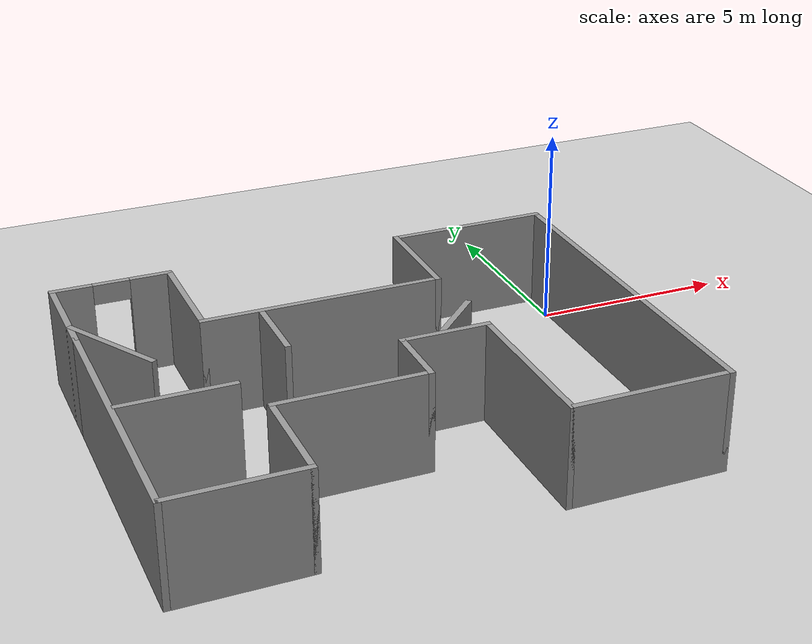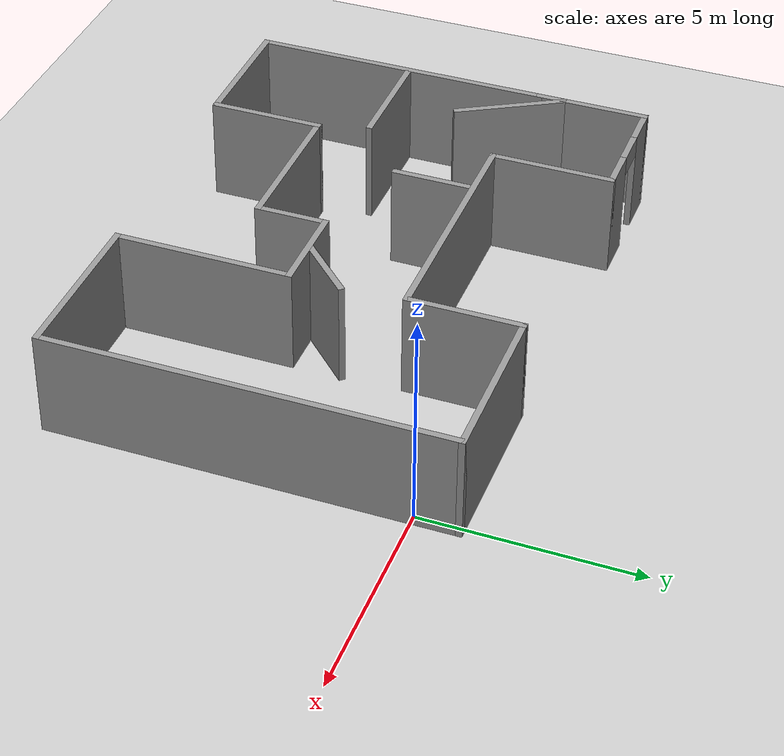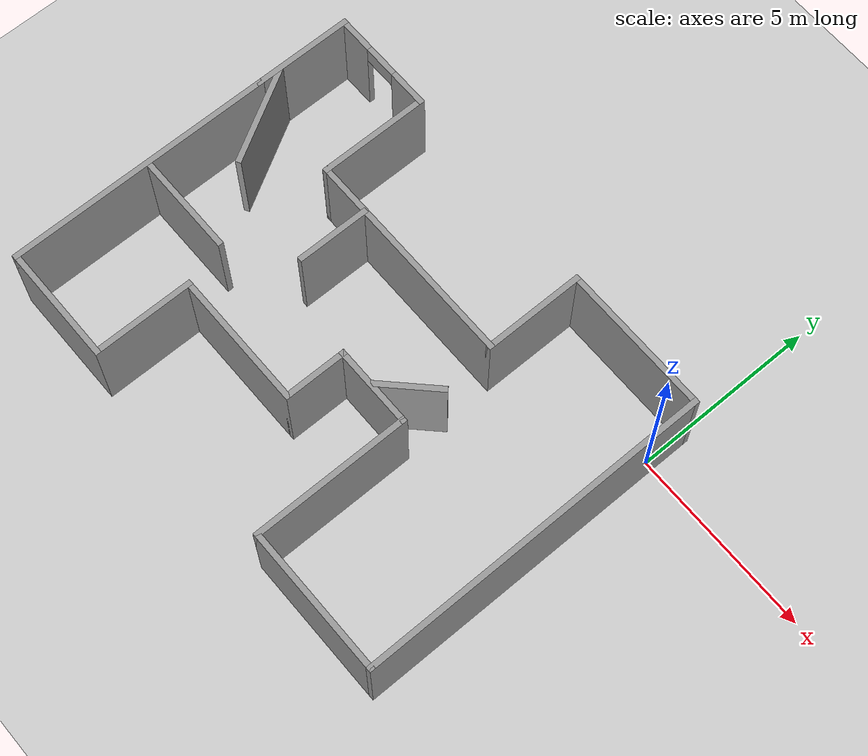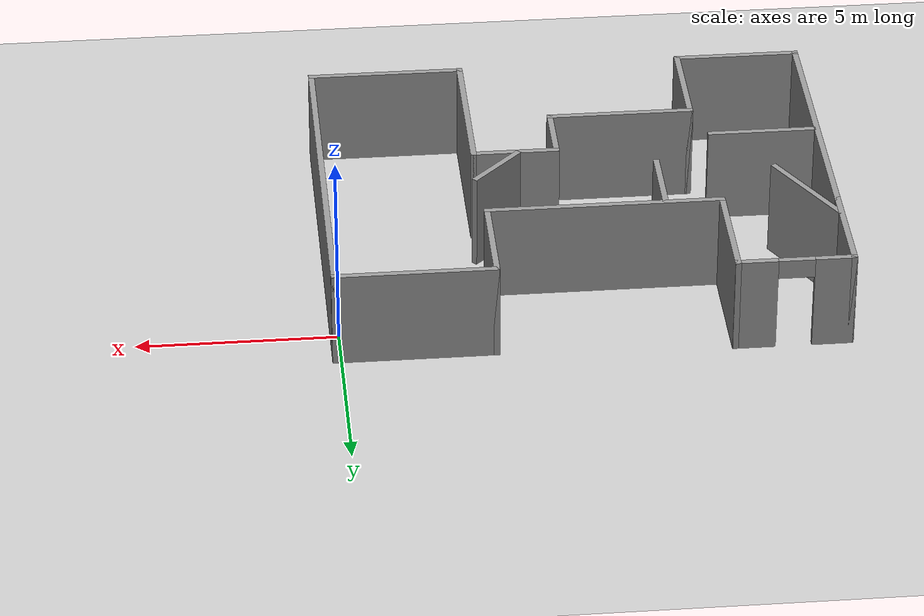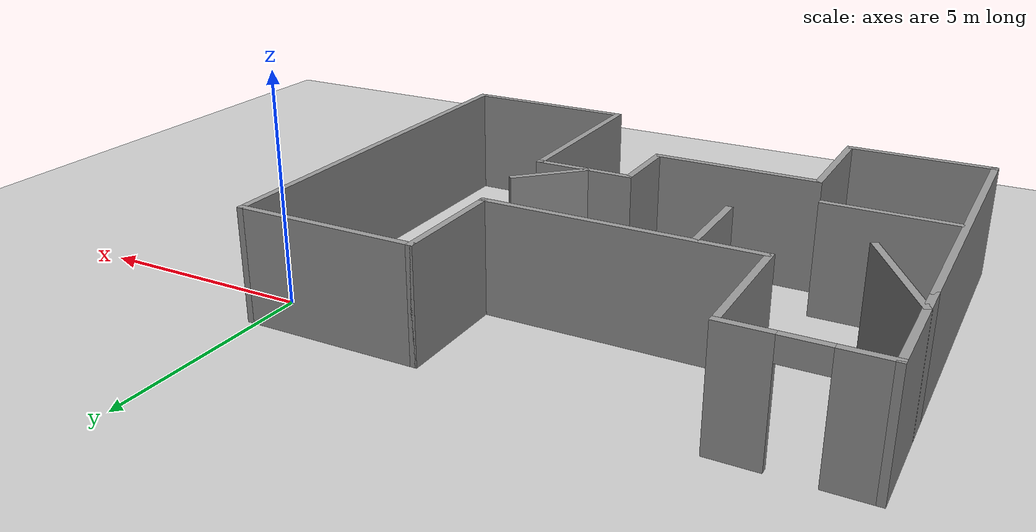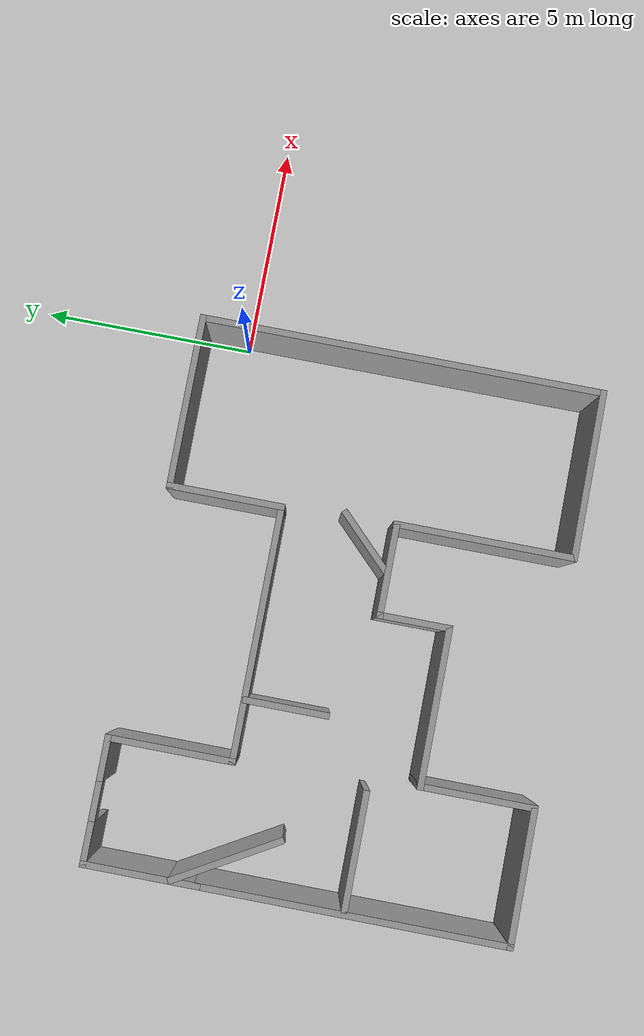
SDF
<sdf version="1.6">
 <world name="default">
  <light name="sun" type="directional">
   <pose>0 0 10 0 -0 0</pose>
   <diffuse>0.8 0.8 0.8 1</diffuse>
   <specular>0.2 0.2 0.2 1</specular>
   <attenuation>
    <range>1000</range>
    <constant>0.9</constant>
    <linear>0.01</linear>
    <quadratic>0.001</quadratic>
   </attenuation>
   <direction>-0.5 0.1 -0.9</direction>
  </light>
  <model name="ground_plane">
   <static>1</static>
   <link name="link">
    <collision name="collision">
     <geometry><plane><normal>0 0 1</normal><size>100 100</size></plane></geometry>
     <surface><friction><ode><mu>100</mu><mu2>50</mu2></ode></friction></surface>
    </collision>
    <visual name="visual">
     <cast_shadows>0</cast_shadows>
     <geometry><plane><normal>0 0 1</normal><size>100 100</size></plane></geometry>
     <material>
      <script><uri>file://media/materials/scripts/gazebo.material</uri><name>Gazebo/Grey</name></script>
     </material>
    </visual>
   </link>
  </model>
  <gravity>0 0 -9.8</gravity>
  <magnetic_field>6e-06 2.3e-05 -4.2e-05</magnetic_field>
  <atmosphere type="adiabatic"/>
  <physics name="default_physics" default="0" type="ode">
   <max_step_size>0.001</max_step_size>
   <real_time_factor>1</real_time_factor>
   <real_time_update_rate>1000</real_time_update_rate>
  </physics>
  <scene><ambient>0.4 0.4 0.4 1</ambient><background>0.7 0.7 0.7 1</background><shadows>1</shadows></scene>
  <spherical_coordinates>
   <surface_model>EARTH_WGS84</surface_model>
   <latitude_deg>0</latitude_deg>
   <longitude_deg>0</longitude_deg>
   <elevation>0</elevation>
   <heading_deg>0</heading_deg>
  </spherical_coordinates>
  <model name="Untitled">
   <pose>-6.1853 -3.55513 0 0 -0 0</pose>
   <link name="Wall_0">
    <collision name="Wall_0_Collision">
     <geometry><box><size>7.25 0.15 2.5</size></box></geometry>
     <pose>0 0 1.25 0 -0 0</pose>
    </collision>
    <visual name="Wall_0_Visual">
     <pose>0 0 1.25 0 -0 0</pose>
     <geometry><box><size>7.25 0.15 2.5</size></box></geometry>
     <material>
      <script><uri>file://media/materials/scripts/gazebo.material</uri><name>Gazebo/Grey</name></script>
      <ambient>1 1 1 1</ambient>
     </material>
     <meta><layer>0</layer></meta>
    </visual>
    <pose>-6.32284 -1.3 0 0 0 -1.5708</pose>
   </link>
   <link name="Wall_1">
    <collision name="Wall_1_Collision">
     <geometry><box><size>3.25 0.15 2.5</size></box></geometry>
     <pose>0 0 1.25 0 -0 0</pose>
    </collision>
    <visual name="Wall_1_Visual">
     <pose>0 0 1.25 0 -0 0</pose>
     <geometry><box><size>3.25 0.15 2.5</size></box></geometry>
     <material>
      <script><uri>file://media/materials/scripts/gazebo.material</uri><name>Gazebo/Grey</name></script>
      <ambient>1 1 1 1</ambient>
     </material>
     <meta><layer>0</layer></meta>
    </visual>
    <pose>-4.77284 -4.85 0 0 -0 0</pose>
   </link>
   <link name="Wall_13">
    <collision name="Wall_13_Collision">
     <geometry><box><size>2.75 0.15 2.5</size></box></geometry>
     <pose>0 0 1.25 0 -0 0</pose>
    </collision>
    <visual name="Wall_13_Visual">
     <pose>0 0 1.25 0 -0 0</pose>
     <geometry><box><size>2.75 0.15 2.5</size></box></geometry>
     <material>
      <script><uri>file://media/materials/scripts/gazebo.material</uri><name>Gazebo/Grey</name></script>
      <ambient>1 1 1 1</ambient>
     </material>
     <meta><layer>0</layer></meta>
    </visual>
    <pose>-6.32284 3.55 0 0 -0 1.5708</pose>
   </link>
   <link name="Wall_14">
    <pose>-4.89784 4.85 0 0 -0 0</pose>
    <visual name="Wall_14_Visual_0">
     <pose>-0.982016 0 1.25 0 -0 0</pose>
     <geometry><box><size>1.03597 0.15 2.5</size></box></geometry>
     <material>
      <script><uri>file://media/materials/scripts/gazebo.material</uri><name>Gazebo/Grey</name></script>
      <ambient>1 1 1 1</ambient>
     </material>
     <meta><layer>0</layer></meta>
    </visual>
    <collision name="Wall_14_Collision_0">
     <geometry><box><size>1.03597 0.15 2.5</size></box></geometry>
     <pose>-0.982016 0 1.25 0 -0 0</pose>
    </collision>
    <visual name="Wall_14_Visual_1">
     <pose>0.967984 0 1.25 0 -0 0</pose>
     <geometry><box><size>1.06403 0.15 2.5</size></box></geometry>
     <material>
      <script><uri>file://media/materials/scripts/gazebo.material</uri><name>Gazebo/Grey</name></script>
      <ambient>1 1 1 1</ambient>
     </material>
     <meta><layer>0</layer></meta>
    </visual>
    <collision name="Wall_14_Collision_1">
     <geometry><box><size>1.06403 0.15 2.5</size></box></geometry>
     <pose>0.967984 0 1.25 0 -0 0</pose>
    </collision>
    <visual name="Wall_14_Visual_2">
     <pose>-0.014032 0 2.25 0 -0 0</pose>
     <geometry><box><size>0.9 0.15 0.5</size></box></geometry>
     <material>
      <script><uri>file://media/materials/scripts/gazebo.material</uri><name>Gazebo/Grey</name></script>
      <ambient>1 1 1 1</ambient>
     </material>
     <meta><layer>0</layer></meta>
    </visual>
    <collision name="Wall_14_Collision_2">
     <geometry><box><size>0.9 0.15 0.5</size></box></geometry>
     <pose>-0.014032 0 2.25 0 -0 0</pose>
    </collision>
   </link>
   <link name="Wall_15">
    <collision name="Wall_15_Collision">
     <geometry><box><size>3 0.15 2.5</size></box></geometry>
     <pose>0 0 1.25 0 -0 0</pose>
    </collision>
    <visual name="Wall_15_Visual">
     <pose>0 0 1.25 0 -0 0</pose>
     <geometry><box><size>3 0.15 2.5</size></box></geometry>
     <material>
      <script><uri>file://media/materials/scripts/gazebo.material</uri><name>Gazebo/Grey</name></script>
      <ambient>1 1 1 1</ambient>
     </material>
     <meta><layer>0</layer></meta>
    </visual>
    <pose>-3.47284 3.425 0 0 0 -1.5708</pose>
   </link>
   <link name="Wall_16">
    <collision name="Wall_16_Collision">
     <geometry><box><size>6 0.15 2.5</size></box></geometry>
     <pose>0 0 1.25 0 -0 0</pose>
    </collision>
    <visual name="Wall_16_Visual">
     <pose>0 0 1.25 0 -0 0</pose>
     <geometry><box><size>6 0.15 2.5</size></box></geometry>
     <material>
      <script><uri>file://media/materials/scripts/gazebo.material</uri><name>Gazebo/Grey</name></script>
      <ambient>1 1 1 1</ambient>
     </material>
     <meta><layer>0</layer></meta>
    </visual>
    <pose>-0.54784 2 0 0 -0 0</pose>
   </link>
   <link name="Wall_17">
    <collision name="Wall_17_Collision">
     <geometry><box><size>2.75 0.15 2.5</size></box></geometry>
     <pose>0 0 1.25 0 -0 0</pose>
    </collision>
    <visual name="Wall_17_Visual">
     <pose>0 0 1.25 0 -0 0</pose>
     <geometry><box><size>2.75 0.15 2.5</size></box></geometry>
     <material>
      <script><uri>file://media/materials/scripts/gazebo.material</uri><name>Gazebo/Grey</name></script>
      <ambient>1 1 1 1</ambient>
     </material>
     <meta><layer>0</layer></meta>
    </visual>
    <pose>2.37716 3.3 0 0 -0 1.5708</pose>
   </link>
   <link name="Wall_18">
    <collision name="Wall_18_Collision">
     <geometry><box><size>4.1 0.15 2.5</size></box></geometry>
     <pose>0 0 1.25 0 -0 0</pose>
    </collision>
    <visual name="Wall_18_Visual">
     <pose>0 0 1.25 0 -0 0</pose>
     <geometry><box><size>4.1 0.15 2.5</size></box></geometry>
     <material>
      <script><uri>file://media/materials/scripts/gazebo.material</uri><name>Gazebo/Grey</name></script>
      <ambient>1 1 1 1</ambient>
     </material>
     <meta><layer>0</layer></meta>
    </visual>
    <pose>4.35216 4.6 0 0 -0 0</pose>
   </link>
   <link name="Wall_2">
    <collision name="Wall_2_Collision">
     <geometry><box><size>2.75 0.15 2.5</size></box></geometry>
     <pose>0 0 1.25 0 -0 0</pose>
    </collision>
    <visual name="Wall_2_Visual">
     <pose>0 0 1.25 0 -0 0</pose>
     <geometry><box><size>2.75 0.15 2.5</size></box></geometry>
     <material>
      <script><uri>file://media/materials/scripts/gazebo.material</uri><name>Gazebo/Grey</name></script>
      <ambient>1 1 1 1</ambient>
     </material>
     <meta><layer>0</layer></meta>
    </visual>
    <pose>-3.22284 -3.55 0 0 -0 1.5708</pose>
   </link>
   <link name="Wall_22">
    <collision name="Wall_22_Collision">
     <geometry><box><size>2 0.15 2.5</size></box></geometry>
     <pose>0 0 1.25 0 -0 0</pose>
    </collision>
    <visual name="Wall_22_Visual">
     <pose>0 0 1.25 0 -0 0</pose>
     <geometry><box><size>2 0.15 2.5</size></box></geometry>
     <material>
      <script><uri>file://media/materials/scripts/gazebo.material</uri><name>Gazebo/Grey</name></script>
      <ambient>1 1 1 1</ambient>
     </material>
     <meta><layer>0</layer></meta>
    </visual>
    <pose>-2.06681 1.04743 0 0 0 -1.5708</pose>
   </link>
   <link name="Wall_26">
    <collision name="Wall_26_Collision">
     <geometry><box><size>1.75 0.15 2.5</size></box></geometry>
     <pose>0 0 1.25 0 -0 0</pose>
    </collision>
    <visual name="Wall_26_Visual">
     <pose>0 0 1.25 0 -0 0</pose>
     <geometry><box><size>1.75 0.15 2.5</size></box></geometry>
     <material>
      <script><uri>file://media/materials/scripts/gazebo.material</uri><name>Gazebo/Grey</name></script>
      <ambient>1 1 1 1</ambient>
     </material>
     <meta><layer>0</layer></meta>
    </visual>
    <pose>1.94534 -0.029379 0 0 -0 0.785398</pose>
   </link>
   <link name="Wall_28">
    <collision name="Wall_28_Collision">
     <geometry><box><size>2.75 0.15 2.5</size></box></geometry>
     <pose>0 0 1.25 0 -0 0</pose>
    </collision>
    <visual name="Wall_28_Visual">
     <pose>0 0 1.25 0 -0 0</pose>
     <geometry><box><size>2.75 0.15 2.5</size></box></geometry>
     <material>
      <script><uri>file://media/materials/scripts/gazebo.material</uri><name>Gazebo/Grey</name></script>
      <ambient>1 1 1 1</ambient>
     </material>
     <meta><layer>0</layer></meta>
    </visual>
    <pose>-5.64971 1.72556 0 0 0 -1.0472</pose>
   </link>
   <link name="Wall_3">
    <collision name="Wall_3_Collision">
     <geometry><box><size>3.75 0.15 2.5</size></box></geometry>
     <pose>0 0 1.25 0 -0 0</pose>
    </collision>
    <visual name="Wall_3_Visual">
     <pose>0 0 1.25 0 -0 0</pose>
     <geometry><box><size>3.75 0.15 2.5</size></box></geometry>
     <material>
      <script><uri>file://media/materials/scripts/gazebo.material</uri><name>Gazebo/Grey</name></script>
      <ambient>1 1 1 1</ambient>
     </material>
     <meta><layer>0</layer></meta>
    </visual>
    <pose>-1.42284 -2.25 0 0 -0 0</pose>
   </link>
   <link name="Wall_30">
    <collision name="Wall_30_Collision">
     <geometry><box><size>2.75 0.15 2.5</size></box></geometry>
     <pose>0 0 1.25 0 -0 0</pose>
    </collision>
    <visual name="Wall_30_Visual">
     <pose>0 0 1.25 0 -0 0</pose>
     <geometry><box><size>2.75 0.15 2.5</size></box></geometry>
     <material>
      <script><uri>file://media/materials/scripts/gazebo.material</uri><name>Gazebo/Grey</name></script>
      <ambient>1 1 1 1</ambient>
     </material>
     <meta><layer>0</layer></meta>
    </visual>
    <pose>-4.90719 -1.08081 0 0 -0 0</pose>
   </link>
   <link name="Wall_4">
    <collision name="Wall_4_Collision">
     <geometry><box><size>1.75 0.15 2.5</size></box></geometry>
     <pose>0 0 1.25 0 -0 0</pose>
    </collision>
    <visual name="Wall_4_Visual">
     <pose>0 0 1.25 0 -0 0</pose>
     <geometry><box><size>1.75 0.15 2.5</size></box></geometry>
     <material>
      <script><uri>file://media/materials/scripts/gazebo.material</uri><name>Gazebo/Grey</name></script>
      <ambient>1 1 1 1</ambient>
     </material>
     <meta><layer>0</layer></meta>
    </visual>
    <pose>0.377161 -1.45 0 0 -0 1.5708</pose>
   </link>
   <link name="Wall_5">
    <collision name="Wall_5_Collision">
     <geometry><box><size>2.25 0.15 2.5</size></box></geometry>
     <pose>0 0 1.25 0 -0 0</pose>
    </collision>
    <visual name="Wall_5_Visual">
     <pose>0 0 1.25 0 -0 0</pose>
     <geometry><box><size>2.25 0.15 2.5</size></box></geometry>
     <material>
      <script><uri>file://media/materials/scripts/gazebo.material</uri><name>Gazebo/Grey</name></script>
      <ambient>1 1 1 1</ambient>
     </material>
     <meta><layer>0</layer></meta>
    </visual>
    <pose>1.42716 -0.65 0 0 -0 0</pose>
   </link>
   <link name="Wall_6">
    <collision name="Wall_6_Collision">
     <geometry><box><size>4.25 0.15 2.5</size></box></geometry>
     <pose>0 0 1.25 0 -0 0</pose>
    </collision>
    <visual name="Wall_6_Visual">
     <pose>0 0 1.25 0 -0 0</pose>
     <geometry><box><size>4.25 0.15 2.5</size></box></geometry>
     <material>
      <script><uri>file://media/materials/scripts/gazebo.material</uri><name>Gazebo/Grey</name></script>
      <ambient>1 1 1 1</ambient>
     </material>
     <meta><layer>0</layer></meta>
    </visual>
    <pose>2.47716 -2.7 0 0 0 -1.5708</pose>
   </link>
   <link name="Wall_7">
    <collision name="Wall_7_Collision">
     <geometry><box><size>4 0.15 2.5</size></box></geometry>
     <pose>0 0 1.25 0 -0 0</pose>
    </collision>
    <visual name="Wall_7_Visual">
     <pose>0 0 1.25 0 -0 0</pose>
     <geometry><box><size>4 0.15 2.5</size></box></geometry>
     <material>
      <script><uri>file://media/materials/scripts/gazebo.material</uri><name>Gazebo/Grey</name></script>
      <ambient>1 1 1 1</ambient>
     </material>
     <meta><layer>0</layer></meta>
    </visual>
    <pose>4.40216 -4.75 0 0 -0 0</pose>
   </link>
   <link name="Wall_8">
    <collision name="Wall_8_Collision">
     <geometry><box><size>9.5 0.15 2.5</size></box></geometry>
     <pose>0 0 1.25 0 -0 0</pose>
    </collision>
    <visual name="Wall_8_Visual">
     <pose>0 0 1.25 0 -0 0</pose>
     <geometry><box><size>9.5 0.15 2.5</size></box></geometry>
     <material>
      <script><uri>file://media/materials/scripts/gazebo.material</uri><name>Gazebo/Grey</name></script>
      <ambient>1 1 1 1</ambient>
     </material>
     <meta><layer>0</layer></meta>
    </visual>
    <pose>6.32716 -0.075 0 0 -0 1.5708</pose>
   </link>
   <static>1</static>
  </model>
 </world>
</sdf>
